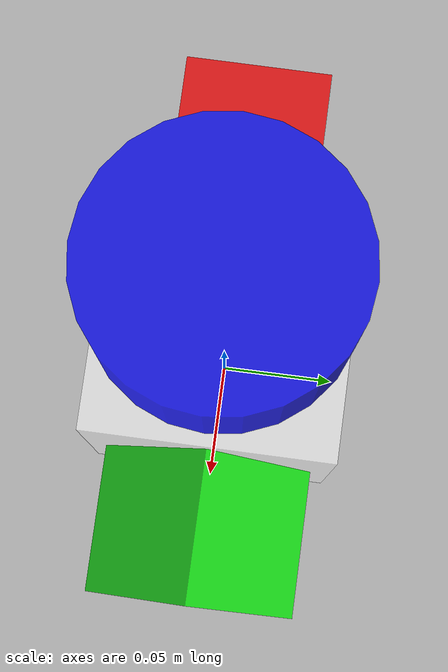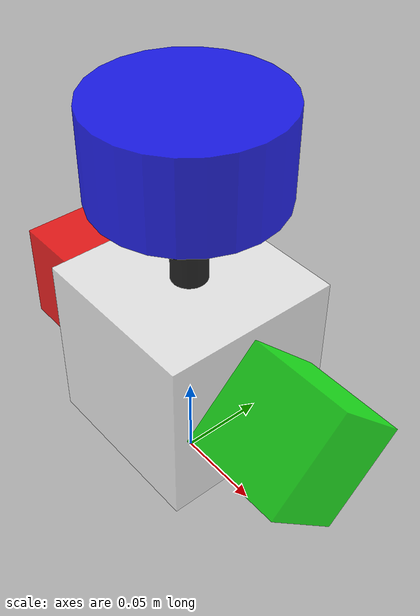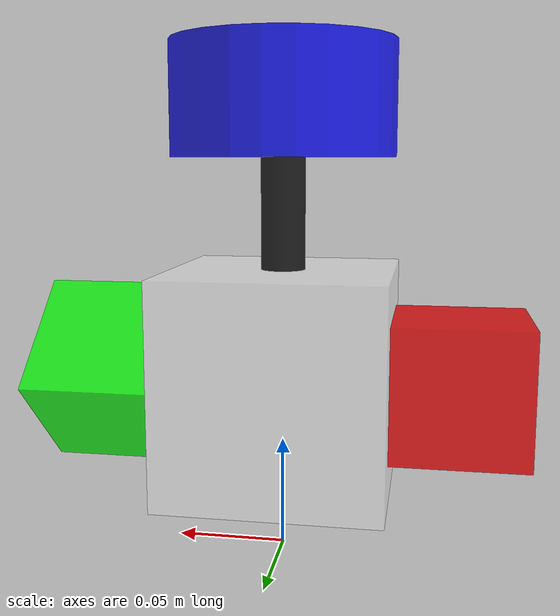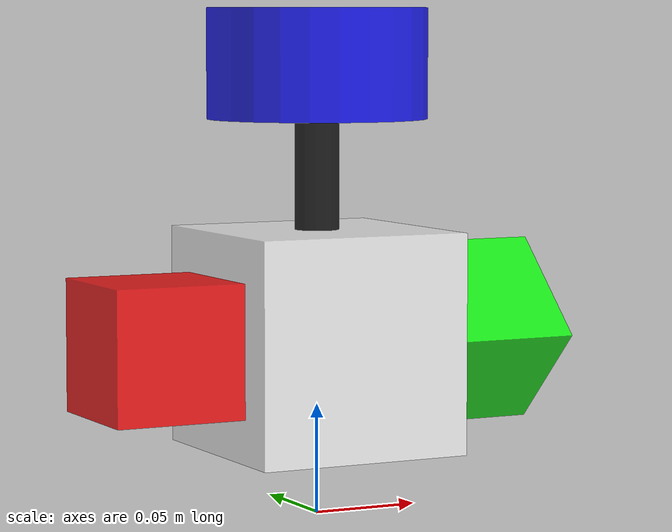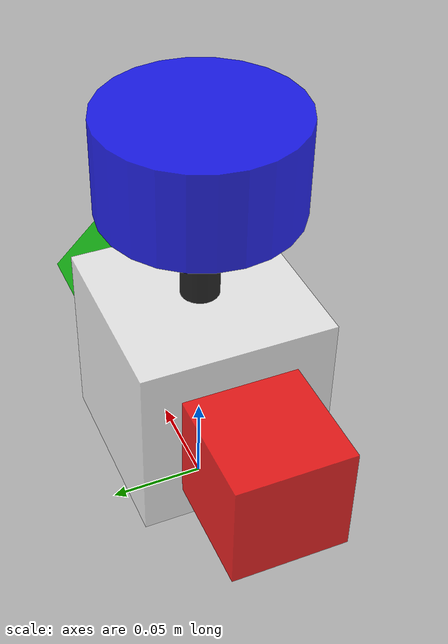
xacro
<robot xmlns:xacro="http://www.ros.org/wiki/xacro" name="sim-robot">
  <xacro:property name="foot_box_size" value="0.001" />
  <xacro:property name="base_box_size" value="0.1" />

  <xacro:property name="imu_box_size" value="0.06" />

  <xacro:property name="lidar_cylinder_radius" value="0.05" />
  <xacro:property name="lidar_cylinder_length" value="0.05" />

  <xacro:property name="arm_cylinder_radius" value="0.01" />
  <xacro:property name="arm_cylinder_length" value="0.05" />

  <xacro:property name="wheel_cylinder_radius" value="0.08" />
  <xacro:property name="wheel_cylinder_length" value="0.04" />
  <xacro:property name="ground_clearance" value="0.03" />

  <xacro:property name="camera_box_radius" value="0.06" />

  <xacro:property name="transparency" value="0.8" />

  <xacro:property name="PI" value="3.1415926535" />

  <xacro:property name="foot_mass" value="0.001" />
  <xacro:property name="base_mass" value="0.5" />
  <xacro:property name="lidar_mass" value="0.02" />
  <xacro:property name="arm_mass" value="0.01" />
  <xacro:property name="imu_mass" value="0.01" />
  <xacro:property name="camera_mass" value="0.01" />

  <xacro:property name="wheel_mass" value="0.3" />
  <xacro:property name="support_wheel_mass" value="0.3" />

  <xacro:include filename="util.xacro" />

  <!-- foot base link -->
  <link name="base_footprint">
    <visual>
      <geometry>
        <box size="${foot_box_size} ${foot_box_size} ${foot_box_size}" />
      </geometry>
      <material name="black">
        <color rgba="0.0 0.0 0.0 ${transparency}" />
      </material>
    </visual>
  </link>

  <gazebo reference="base_footprint">
    <material>Gazebo/Black</material>
  </gazebo>

  <gazebo>
    <plugin name="base_footprint_pose" filename="libgazebo_ros_p3d.so">
      <alwaysOn>true</alwaysOn>
      <updateRate>10.0</updateRate>
      <bodyName>base_footprint</bodyName>
      <topicName>base_footprint_ground_truth</topicName>
      <gaussianNoise>0.0</gaussianNoise>
      <frameName>map</frameName>
      <xyzOffsets>0 0 0</xyzOffsets>
      <rpyOffsets>0 0 0</rpyOffsets>
    </plugin>
  </gazebo>

  <!-- base link -->
  <link name="base_link">
    <visual>
      <geometry>
        <box size="${base_box_size} ${base_box_size} ${base_box_size}" />
      </geometry>
      <material name="white">
        <color rgba="1.0 1.0 1.0 ${transparency}" />
      </material>
    </visual>
    <collision>
      <geometry>
        <box size="${base_box_size} ${base_box_size} ${base_box_size}" />
      </geometry>
      <origin xyz="0.0 0.0 0.0" rpy="0.0 0.0 0.0" />
    </collision>
    <xacro:box_inertial_matrix m="${base_mass}" l="${base_box_size}" w="${base_box_size}" h="${base_box_size}" />
  </link>

  <gazebo>
    <plugin name="base_link_pose" filename="libgazebo_ros_p3d.so">
      <alwaysOn>true</alwaysOn>
      <updateRate>10.0</updateRate>
      <bodyName>base_link</bodyName>
      <topicName>base_link_ground_truth</topicName>
      <gaussianNoise>0.0</gaussianNoise>
      <frameName>map</frameName>
      <xyzOffsets>0 0 0</xyzOffsets>
      <rpyOffsets>0 0 0</rpyOffsets>
    </plugin>
  </gazebo>

  <gazebo reference="base_link">
    <material>Gazebo/White</material>
  </gazebo>

  <!-- joint -->
  <joint name="base_to_foot" type="fixed">
    <parent link="base_footprint" />
    <child link="base_link" />
    <origin xyz="0.0 0.0 ${base_box_size * 0.5 + ground_clearance}" rpy="0.0 0.0 0.0" />
    <axis xyz="0.0 0.0 1.0" />
  </joint>

  <xacro:include filename="lidar.xacro" />
  <xacro:include filename="imu.xacro" />
  <xacro:include filename="camera.xacro" />

  <xacro:include filename="sensor-lidar.xacro" />
  <xacro:include filename="sensor-imu.xacro" />
  <xacro:include filename="sensor-camera.xacro" />

</robot>

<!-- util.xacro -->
<robot xmlns:xacro="http://www.ros.org/wiki/xacro" name="macro">
  <xacro:macro name="cylinder_inertial_matrix" params="m r h">
    <inertial>
      <mass value="${m}" />
      <inertia ixx="${m*(3*r*r+h*h)/12}" ixy="0" ixz="0" iyy="${m*(3*r*r+h*h)/12}" iyz="0" izz="${m*r*r/2}" />
    </inertial>
  </xacro:macro>

  <xacro:macro name="box_inertial_matrix" params="m l w h">
    <inertial>
      <mass value="${m}" />
      <inertia ixx="${m*(h*h + l*l)/12}" ixy="0" ixz="0" iyy="${m*(w*w + l*l)/12}" iyz="0" izz="${m*(w*w + h*h)/12}" />
    </inertial>
  </xacro:macro>

  <xacro:macro name="sphere_inertial_matrix" params="m r">
    <inertial>
      <mass value="${m}" />
      <inertia ixx="${2*m*r*r/5}" ixy="0" ixz="0" iyy="${2*m*r*r/5}" iyz="0" izz="${2*m*r*r/5}" />
    </inertial>
  </xacro:macro>
</robot>

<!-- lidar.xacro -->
<robot xmlns:xacro="http://www.ros.org/wiki/xacro" name="lidar">
  <!-- lidar -->
  <link name="arm">
    <visual>
      <geometry>
        <cylinder radius="${arm_cylinder_radius}" length="${arm_cylinder_length}" />
      </geometry>
      <origin xyz="0.0 0.0 0.0" rpy="0.0 0.0 0.0" />
      <material name="black">
        <color rgba="0.0 0.0 0.0 ${transparency}" />
      </material>
    </visual>
    <collision>
      <geometry>
        <cylinder radius="${arm_cylinder_radius}" length="${arm_cylinder_length}" />
      </geometry>
      <origin xyz="0.0 0.0 0.0" rpy="0.0 0.0 0.0" />
    </collision>
    <xacro:cylinder_inertial_matrix m="${arm_mass}" r="${arm_cylinder_radius}" h="${arm_cylinder_length}" />
  </link>

  <!-- joint -->
  <joint name="arm_to_base_link" type="fixed">
    <parent link="base_link" />
    <child link="arm" />
    <origin xyz="0.0 0.0 ${base_box_size * 0.5 + arm_cylinder_length * 0.5}" rpy="0.0 0.0 0.0" />
    <axis xyz="0.0 0.0 1.0" />
  </joint>

  <gazebo reference="arm">
    <material>Gazebo/Black</material>
  </gazebo>

  <!-- lidar -->
  <link name="lidar">
    <visual>
      <geometry>
        <cylinder radius="${lidar_cylinder_radius}" length="${lidar_cylinder_length}" />
      </geometry>
      <origin xyz="0.0 0.0 0.0" rpy="0.0 0.0 0.0" />
      <material name="blue">
        <color rgba="0.0 0.0 1.0 ${transparency}" />
      </material>
    </visual>
    <collision>
      <geometry>
        <cylinder radius="${lidar_cylinder_radius}" length="${lidar_cylinder_length}" />
      </geometry>
      <origin xyz="0.0 0.0 0.0" rpy="0.0 0.0 0.0" />
    </collision>
    <xacro:cylinder_inertial_matrix m="${lidar_mass}" r="${lidar_cylinder_radius}" h="${lidar_cylinder_length}" />
  </link>

  <!-- joint -->
  <joint name="lidar_to_arm" type="fixed">
    <parent link="arm" />
    <child link="lidar" />
    <origin xyz="0.0 0.0 ${arm_cylinder_length * 0.5 + lidar_cylinder_length * 0.5}" rpy="0.0 0.0 0.0" />
    <axis xyz="0.0 0.0 1.0" />
  </joint>

  <gazebo reference="lidar">
    <material>Gazebo/Red</material>
  </gazebo>
</robot>

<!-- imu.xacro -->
<robot xmlns:xacro="http://www.ros.org/wiki/xacro" name="imu">
  <!-- imu -->
  <link name="imu">
    <visual>
      <geometry>
        <box size="${imu_box_size} ${imu_box_size} ${imu_box_size}" />
      </geometry>
      <origin xyz="0.0 0.0 0.0" rpy="0.0 0.0 0.0" />
      <material name="red">
        <color rgba="1.0 0.0 0.0 ${transparency}" />
      </material>
    </visual>
    <collision>
      <geometry>
        <box size="${imu_box_size} ${imu_box_size} ${imu_box_size}" />
      </geometry>
      <origin xyz="0.0 0.0 0.0" rpy="0.0 0.0 0.0" />
    </collision>
    <xacro:box_inertial_matrix m="${imu_mass}" l="${imu_box_size}" w="${imu_box_size}" h="${imu_box_size}" />
  </link>

  <!-- joint -->
  <joint name="imu_to_base_link" type="fixed">
    <parent link="base_link" />
    <child link="imu" />
    <origin xyz="-${base_box_size * 0.5 + imu_box_size * 0.5} 0.0 0.0" rpy="0.0 0.0 0.0" />
    <axis xyz="0.0 0.0 1.0" />
  </joint>

  <gazebo reference="imu">
    <material>Gazebo/Green</material>
  </gazebo>
</robot>

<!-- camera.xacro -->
<robot xmlns:xacro="http://www.ros.org/wiki/xacro" name="camera">
  <!-- camera -->
  <link name="camera">
    <visual>
      <geometry>
        <box size="${camera_box_radius} ${camera_box_radius} ${camera_box_radius}" />
      </geometry>
      <origin xyz="0.0 0.0 0.0" rpy="0.0 0.0 0.0" />
      <material name="green">
        <color rgba="0.0 1.0 0.0 ${transparency}" />
      </material>
    </visual>
    <collision>
      <geometry>
        <box size="${camera_box_radius} ${camera_box_radius} ${camera_box_radius}" />
      </geometry>
      <origin xyz="0.0 0.0 0.0" rpy="0.0 0.0 0.0" />
    </collision>
    <xacro:box_inertial_matrix m="${camera_mass}" l="${camera_box_radius}" w="${camera_box_radius}" h="${camera_box_radius}" />
  </link>

  <!-- joint -->
  <joint name="camera_to_base_link" type="fixed">
    <parent link="base_link" />
    <child link="camera" />
    <origin xyz="${base_box_size * 0.5 + camera_box_radius * 0.5} 0.0 0.0" rpy="${PI * -0.5} ${PI * -0.25} ${PI * -0.5}" />
    <axis xyz="0.0 0.0 1.0" />
  </joint>

  <gazebo reference="camera">
    <material>Gazebo/Blue</material>
  </gazebo>

</robot>
